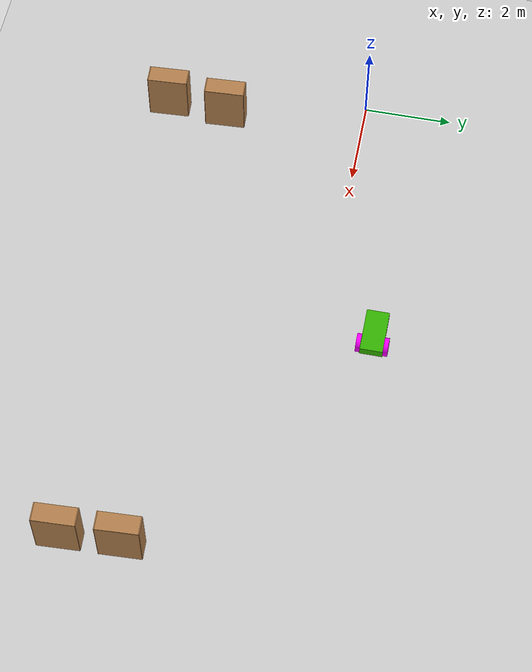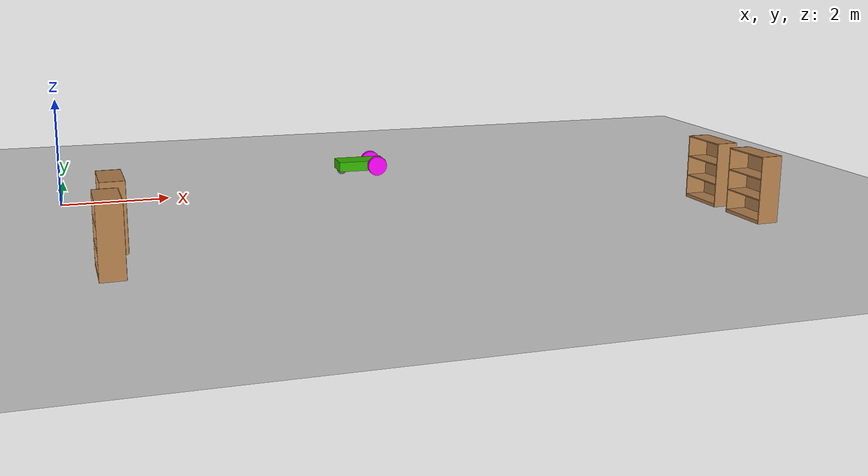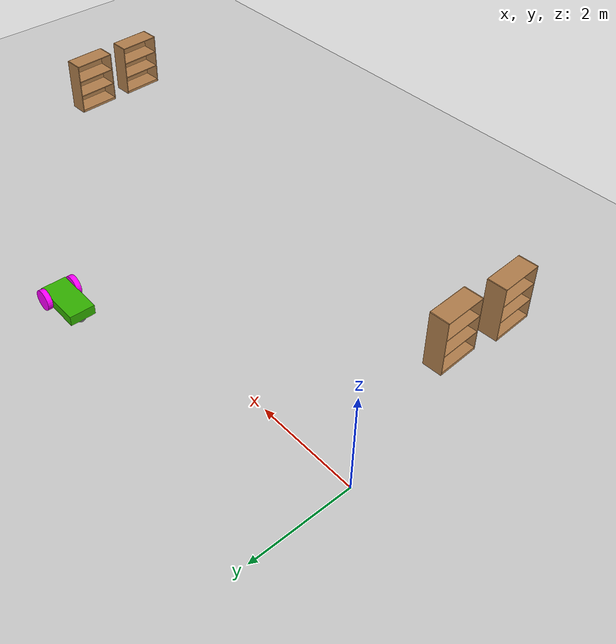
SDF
<sdf version="1.6">
 <world name="default">
  <model name="ground_plane">
   <static>1</static>
   <link name="link">
    <collision name="collision">
     <geometry><plane><normal>0 0 1</normal><size>100 100</size></plane></geometry>
     <surface><friction><ode><mu>100</mu><mu2>50</mu2></ode></friction></surface>
    </collision>
    <visual name="visual">
     <cast_shadows>0</cast_shadows>
     <geometry><plane><normal>0 0 1</normal><size>100 100</size></plane></geometry>
     <material>
      <script><uri>file://media/materials/scripts/gazebo.material</uri><name>Gazebo/Grey</name></script>
     </material>
    </visual>
   </link>
  </model>
  <model name="bookshelf">
   <static>1</static>
   <link name="link">
    <inertial><mass>1</mass></inertial>
    <collision name="back">
     <pose>0 0.005 0.6 0 -0 0</pose>
     <geometry><box><size>0.9 0.01 1.2</size></box></geometry>
    </collision>
    <visual name="visual1">
     <pose>0 0.005 0.6 0 -0 0</pose>
     <geometry><box><size>0.9 0.01 1.2</size></box></geometry>
     <material>
      <script><uri>file://media/materials/scripts/gazebo.material</uri><name>Gazebo/Wood</name></script>
     </material>
    </visual>
    <collision name="left_side">
     <pose>0.45 -0.195 0.6 0 -0 0</pose>
     <geometry><box><size>0.02 0.4 1.2</size></box></geometry>
    </collision>
    <visual name="visual2">
     <pose>0.45 -0.195 0.6 0 -0 0</pose>
     <geometry><box><size>0.02 0.4 1.2</size></box></geometry>
     <material>
      <script><uri>file://media/materials/scripts/gazebo.material</uri><name>Gazebo/Wood</name></script>
     </material>
    </visual>
    <collision name="right_side">
     <pose>-0.45 -0.195 0.6 0 -0 0</pose>
     <geometry><box><size>0.02 0.4 1.2</size></box></geometry>
    </collision>
    <visual name="visual3">
     <pose>-0.45 -0.195 0.6 0 -0 0</pose>
     <geometry><box><size>0.02 0.4 1.2</size></box></geometry>
     <material>
      <script><uri>file://media/materials/scripts/gazebo.material</uri><name>Gazebo/Wood</name></script>
     </material>
    </visual>
    <collision name="bottom">
     <pose>0 -0.195 0.03 0 -0 0</pose>
     <geometry><box><size>0.88 0.4 0.06</size></box></geometry>
    </collision>
    <visual name="visual4">
     <pose>0 -0.195 0.03 0 -0 0</pose>
     <geometry><box><size>0.88 0.4 0.06</size></box></geometry>
     <material>
      <script><uri>file://media/materials/scripts/gazebo.material</uri><name>Gazebo/Wood</name></script>
     </material>
    </visual>
    <collision name="top">
     <pose>0 -0.195 1.19 0 -0 0</pose>
     <geometry><box><size>0.88 0.4 0.02</size></box></geometry>
    </collision>
    <visual name="visual5">
     <pose>0 -0.195 1.19 0 -0 0</pose>
     <geometry><box><size>0.88 0.4 0.02</size></box></geometry>
     <material>
      <script><uri>file://media/materials/scripts/gazebo.material</uri><name>Gazebo/Wood</name></script>
     </material>
    </visual>
    <collision name="low_shelf">
     <pose>0 -0.195 0.43 0 -0 0</pose>
     <geometry><box><size>0.88 0.4 0.02</size></box></geometry>
    </collision>
    <visual name="visual6">
     <pose>0 -0.195 0.43 0 -0 0</pose>
     <geometry><box><size>0.88 0.4 0.02</size></box></geometry>
     <material>
      <script><uri>file://media/materials/scripts/gazebo.material</uri><name>Gazebo/Wood</name></script>
     </material>
    </visual>
    <collision name="high_shelf">
     <pose>0 -0.195 0.8 0 -0 0</pose>
     <geometry><box><size>0.88 0.4 0.02</size></box></geometry>
    </collision>
    <visual name="visual7">
     <pose>0 -0.195 0.8 0 -0 0</pose>
     <geometry><box><size>0.88 0.4 0.02</size></box></geometry>
     <material>
      <script><uri>file://media/materials/scripts/gazebo.material</uri><name>Gazebo/Wood</name></script>
     </material>
    </visual>
   </link>
   <pose>0.980106 -4.53001 0 0 0 -1.52246</pose>
  </model>
  <model name="bookshelf_clone">
   <static>1</static>
   <link name="link">
    <inertial><mass>1</mass></inertial>
    <collision name="back">
     <pose>0 0.005 0.6 0 -0 0</pose>
     <geometry><box><size>0.9 0.01 1.2</size></box></geometry>
    </collision>
    <visual name="visual1">
     <pose>0 0.005 0.6 0 -0 0</pose>
     <geometry><box><size>0.9 0.01 1.2</size></box></geometry>
     <material>
      <script><uri>file://media/materials/scripts/gazebo.material</uri><name>Gazebo/Wood</name></script>
     </material>
    </visual>
    <collision name="left_side">
     <pose>0.45 -0.195 0.6 0 -0 0</pose>
     <geometry><box><size>0.02 0.4 1.2</size></box></geometry>
    </collision>
    <visual name="visual2">
     <pose>0.45 -0.195 0.6 0 -0 0</pose>
     <geometry><box><size>0.02 0.4 1.2</size></box></geometry>
     <material>
      <script><uri>file://media/materials/scripts/gazebo.material</uri><name>Gazebo/Wood</name></script>
     </material>
    </visual>
    <collision name="right_side">
     <pose>-0.45 -0.195 0.6 0 -0 0</pose>
     <geometry><box><size>0.02 0.4 1.2</size></box></geometry>
    </collision>
    <visual name="visual3">
     <pose>-0.45 -0.195 0.6 0 -0 0</pose>
     <geometry><box><size>0.02 0.4 1.2</size></box></geometry>
     <material>
      <script><uri>file://media/materials/scripts/gazebo.material</uri><name>Gazebo/Wood</name></script>
     </material>
    </visual>
    <collision name="bottom">
     <pose>0 -0.195 0.03 0 -0 0</pose>
     <geometry><box><size>0.88 0.4 0.06</size></box></geometry>
    </collision>
    <visual name="visual4">
     <pose>0 -0.195 0.03 0 -0 0</pose>
     <geometry><box><size>0.88 0.4 0.06</size></box></geometry>
     <material>
      <script><uri>file://media/materials/scripts/gazebo.material</uri><name>Gazebo/Wood</name></script>
     </material>
    </visual>
    <collision name="top">
     <pose>0 -0.195 1.19 0 -0 0</pose>
     <geometry><box><size>0.88 0.4 0.02</size></box></geometry>
    </collision>
    <visual name="visual5">
     <pose>0 -0.195 1.19 0 -0 0</pose>
     <geometry><box><size>0.88 0.4 0.02</size></box></geometry>
     <material>
      <script><uri>file://media/materials/scripts/gazebo.material</uri><name>Gazebo/Wood</name></script>
     </material>
    </visual>
    <collision name="low_shelf">
     <pose>0 -0.195 0.43 0 -0 0</pose>
     <geometry><box><size>0.88 0.4 0.02</size></box></geometry>
    </collision>
    <visual name="visual6">
     <pose>0 -0.195 0.43 0 -0 0</pose>
     <geometry><box><size>0.88 0.4 0.02</size></box></geometry>
     <material>
      <script><uri>file://media/materials/scripts/gazebo.material</uri><name>Gazebo/Wood</name></script>
     </material>
    </visual>
    <collision name="high_shelf">
     <pose>0 -0.195 0.8 0 -0 0</pose>
     <geometry><box><size>0.88 0.4 0.02</size></box></geometry>
    </collision>
    <visual name="visual7">
     <pose>0 -0.195 0.8 0 -0 0</pose>
     <geometry><box><size>0.88 0.4 0.02</size></box></geometry>
     <material>
      <script><uri>file://media/materials/scripts/gazebo.material</uri><name>Gazebo/Wood</name></script>
     </material>
    </visual>
   </link>
   <pose>1.06301 -3.18048 0 0 0 -1.52246</pose>
  </model>
  <model name="bookshelf_clone_0">
   <static>1</static>
   <link name="link">
    <inertial><mass>1</mass></inertial>
    <collision name="back">
     <pose>0 0.005 0.6 0 -0 0</pose>
     <geometry><box><size>0.9 0.01 1.2</size></box></geometry>
    </collision>
    <visual name="visual1">
     <pose>0 0.005 0.6 0 -0 0</pose>
     <geometry><box><size>0.9 0.01 1.2</size></box></geometry>
     <material>
      <script><uri>file://media/materials/scripts/gazebo.material</uri><name>Gazebo/Wood</name></script>
     </material>
    </visual>
    <collision name="left_side">
     <pose>0.45 -0.195 0.6 0 -0 0</pose>
     <geometry><box><size>0.02 0.4 1.2</size></box></geometry>
    </collision>
    <visual name="visual2">
     <pose>0.45 -0.195 0.6 0 -0 0</pose>
     <geometry><box><size>0.02 0.4 1.2</size></box></geometry>
     <material>
      <script><uri>file://media/materials/scripts/gazebo.material</uri><name>Gazebo/Wood</name></script>
     </material>
    </visual>
    <collision name="right_side">
     <pose>-0.45 -0.195 0.6 0 -0 0</pose>
     <geometry><box><size>0.02 0.4 1.2</size></box></geometry>
    </collision>
    <visual name="visual3">
     <pose>-0.45 -0.195 0.6 0 -0 0</pose>
     <geometry><box><size>0.02 0.4 1.2</size></box></geometry>
     <material>
      <script><uri>file://media/materials/scripts/gazebo.material</uri><name>Gazebo/Wood</name></script>
     </material>
    </visual>
    <collision name="bottom">
     <pose>0 -0.195 0.03 0 -0 0</pose>
     <geometry><box><size>0.88 0.4 0.06</size></box></geometry>
    </collision>
    <visual name="visual4">
     <pose>0 -0.195 0.03 0 -0 0</pose>
     <geometry><box><size>0.88 0.4 0.06</size></box></geometry>
     <material>
      <script><uri>file://media/materials/scripts/gazebo.material</uri><name>Gazebo/Wood</name></script>
     </material>
    </visual>
    <collision name="top">
     <pose>0 -0.195 1.19 0 -0 0</pose>
     <geometry><box><size>0.88 0.4 0.02</size></box></geometry>
    </collision>
    <visual name="visual5">
     <pose>0 -0.195 1.19 0 -0 0</pose>
     <geometry><box><size>0.88 0.4 0.02</size></box></geometry>
     <material>
      <script><uri>file://media/materials/scripts/gazebo.material</uri><name>Gazebo/Wood</name></script>
     </material>
    </visual>
    <collision name="low_shelf">
     <pose>0 -0.195 0.43 0 -0 0</pose>
     <geometry><box><size>0.88 0.4 0.02</size></box></geometry>
    </collision>
    <visual name="visual6">
     <pose>0 -0.195 0.43 0 -0 0</pose>
     <geometry><box><size>0.88 0.4 0.02</size></box></geometry>
     <material>
      <script><uri>file://media/materials/scripts/gazebo.material</uri><name>Gazebo/Wood</name></script>
     </material>
    </visual>
    <collision name="high_shelf">
     <pose>0 -0.195 0.8 0 -0 0</pose>
     <geometry><box><size>0.88 0.4 0.02</size></box></geometry>
    </collision>
    <visual name="visual7">
     <pose>0 -0.195 0.8 0 -0 0</pose>
     <geometry><box><size>0.88 0.4 0.02</size></box></geometry>
     <material>
      <script><uri>file://media/materials/scripts/gazebo.material</uri><name>Gazebo/Wood</name></script>
     </material>
    </visual>
   </link>
   <pose>12.1841 -4.34916 0 0 0 -1.52246</pose>
  </model>
  <model name="bookshelf_clone_1">
   <static>1</static>
   <link name="link">
    <inertial><mass>1</mass></inertial>
    <collision name="back">
     <pose>0 0.005 0.6 0 -0 0</pose>
     <geometry><box><size>0.9 0.01 1.2</size></box></geometry>
    </collision>
    <visual name="visual1">
     <pose>0 0.005 0.6 0 -0 0</pose>
     <geometry><box><size>0.9 0.01 1.2</size></box></geometry>
     <material>
      <script><uri>file://media/materials/scripts/gazebo.material</uri><name>Gazebo/Wood</name></script>
     </material>
    </visual>
    <collision name="left_side">
     <pose>0.45 -0.195 0.6 0 -0 0</pose>
     <geometry><box><size>0.02 0.4 1.2</size></box></geometry>
    </collision>
    <visual name="visual2">
     <pose>0.45 -0.195 0.6 0 -0 0</pose>
     <geometry><box><size>0.02 0.4 1.2</size></box></geometry>
     <material>
      <script><uri>file://media/materials/scripts/gazebo.material</uri><name>Gazebo/Wood</name></script>
     </material>
    </visual>
    <collision name="right_side">
     <pose>-0.45 -0.195 0.6 0 -0 0</pose>
     <geometry><box><size>0.02 0.4 1.2</size></box></geometry>
    </collision>
    <visual name="visual3">
     <pose>-0.45 -0.195 0.6 0 -0 0</pose>
     <geometry><box><size>0.02 0.4 1.2</size></box></geometry>
     <material>
      <script><uri>file://media/materials/scripts/gazebo.material</uri><name>Gazebo/Wood</name></script>
     </material>
    </visual>
    <collision name="bottom">
     <pose>0 -0.195 0.03 0 -0 0</pose>
     <geometry><box><size>0.88 0.4 0.06</size></box></geometry>
    </collision>
    <visual name="visual4">
     <pose>0 -0.195 0.03 0 -0 0</pose>
     <geometry><box><size>0.88 0.4 0.06</size></box></geometry>
     <material>
      <script><uri>file://media/materials/scripts/gazebo.material</uri><name>Gazebo/Wood</name></script>
     </material>
    </visual>
    <collision name="top">
     <pose>0 -0.195 1.19 0 -0 0</pose>
     <geometry><box><size>0.88 0.4 0.02</size></box></geometry>
    </collision>
    <visual name="visual5">
     <pose>0 -0.195 1.19 0 -0 0</pose>
     <geometry><box><size>0.88 0.4 0.02</size></box></geometry>
     <material>
      <script><uri>file://media/materials/scripts/gazebo.material</uri><name>Gazebo/Wood</name></script>
     </material>
    </visual>
    <collision name="low_shelf">
     <pose>0 -0.195 0.43 0 -0 0</pose>
     <geometry><box><size>0.88 0.4 0.02</size></box></geometry>
    </collision>
    <visual name="visual6">
     <pose>0 -0.195 0.43 0 -0 0</pose>
     <geometry><box><size>0.88 0.4 0.02</size></box></geometry>
     <material>
      <script><uri>file://media/materials/scripts/gazebo.material</uri><name>Gazebo/Wood</name></script>
     </material>
    </visual>
    <collision name="high_shelf">
     <pose>0 -0.195 0.8 0 -0 0</pose>
     <geometry><box><size>0.88 0.4 0.02</size></box></geometry>
    </collision>
    <visual name="visual7">
     <pose>0 -0.195 0.8 0 -0 0</pose>
     <geometry><box><size>0.88 0.4 0.02</size></box></geometry>
     <material>
      <script><uri>file://media/materials/scripts/gazebo.material</uri><name>Gazebo/Wood</name></script>
     </material>
    </visual>
   </link>
   <pose>12.1324 -3.07267 0 0 0 -1.52246</pose>
  </model>
  <model name="diffrobot_0">
   <link name="link_0">
    <pose>-0.05 -0 0.025 0 -0 0</pose>
    <inertial>
     <mass>1</mass>
     <inertia>
      <ixx>0.166667</ixx>
      <ixy>0</ixy>
      <ixz>0</ixz>
      <iyy>0.166667</iyy>
      <iyz>0</iyz>
      <izz>0.166667</izz>
     </inertia>
    </inertial>
    <visual name="visual">
     <geometry><box><size>1 0.5 0.2</size></box></geometry>
     <material>
      <lighting>1</lighting>
      <script><uri>file://media/materials/scripts/gazebo.material</uri><name>Gazebo/Grey</name></script>
      <ambient>0.2 0.7 0 1</ambient>
      <diffuse>0.2 0.7 0 1</diffuse>
      <specular>0.2 0.7 0 1</specular>
      <emissive>0.2 0.7 0 1</emissive>
      <shader type="vertex"><normal_map>__default__</normal_map></shader>
     </material>
    </visual>
    <collision name="collision">
     <geometry><box><size>1 0.5 0.2</size></box></geometry>
     <surface>
      <friction>
       <ode><mu>1</mu><mu2>1</mu2><fdir1>0 0 0</fdir1><slip1>0</slip1><slip2>0</slip2></ode>
       <torsional>
        <coefficient>1</coefficient>
        <patch_radius>0</patch_radius>
        <surface_radius>0</surface_radius>
        <use_patch_radius>1</use_patch_radius>
        <ode><slip>0</slip></ode>
       </torsional>
      </friction>
      <bounce><restitution_coefficient>0</restitution_coefficient><threshold>1e+06</threshold></bounce>
      <contact>
       <collide_without_contact>0</collide_without_contact>
       <collide_without_contact_bitmask>1</collide_without_contact_bitmask>
       <collide_bitmask>1</collide_bitmask>
       <ode>
        <soft_cfm>0</soft_cfm>
        <soft_erp>0.2</soft_erp>
        <kp>1e+13</kp>
        <kd>1</kd>
        <max_vel>0.01</max_vel>
        <min_depth>0</min_depth>
       </ode>
       <bullet>
        <split_impulse>1</split_impulse>
        <split_impulse_penetration_threshold>-0.01</split_impulse_penetration_threshold>
        <soft_cfm>0</soft_cfm>
        <soft_erp>0.2</soft_erp>
        <kp>1e+13</kp>
        <kd>1</kd>
       </bullet>
      </contact>
     </surface>
    </collision>
   </link>
   <link name="link_1">
    <pose>0.25 -0.300019 0.025 1.5707 -0 0</pose>
    <inertial>
     <mass>1</mass>
     <inertia><ixx>0.145833</ixx><ixy>0</ixy><ixz>0</ixz><iyy>0.145833</iyy><iyz>0</iyz><izz>0.125</izz></inertia>
    </inertial>
    <visual name="visual">
     <geometry><cylinder><radius>0.2</radius><length>0.1</length></cylinder></geometry>
     <material>
      <lighting>1</lighting>
      <script><uri>file://media/materials/scripts/gazebo.material</uri><name>Gazebo/Grey</name></script>
      <ambient>1 0 1 1</ambient>
      <diffuse>1 0 1 1</diffuse>
      <specular>1 0 1 1</specular>
      <emissive>1 0 1 1</emissive>
      <shader type="vertex"><normal_map>__default__</normal_map></shader>
     </material>
    </visual>
    <collision name="collision">
     <geometry><cylinder><radius>0.2</radius><length>0.1</length></cylinder></geometry>
     <surface>
      <friction>
       <ode><mu>1</mu><mu2>1</mu2><fdir1>0 0 0</fdir1><slip1>0</slip1><slip2>0</slip2></ode>
       <torsional>
        <coefficient>1</coefficient>
        <patch_radius>0</patch_radius>
        <surface_radius>0</surface_radius>
        <use_patch_radius>1</use_patch_radius>
        <ode><slip>0</slip></ode>
       </torsional>
      </friction>
      <bounce><restitution_coefficient>0</restitution_coefficient><threshold>1e+06</threshold></bounce>
      <contact>
       <collide_without_contact>0</collide_without_contact>
       <collide_without_contact_bitmask>1</collide_without_contact_bitmask>
       <collide_bitmask>1</collide_bitmask>
       <ode>
        <soft_cfm>0</soft_cfm>
        <soft_erp>0.2</soft_erp>
        <kp>1e+13</kp>
        <kd>1</kd>
        <max_vel>0.01</max_vel>
        <min_depth>0</min_depth>
       </ode>
       <bullet>
        <split_impulse>1</split_impulse>
        <split_impulse_penetration_threshold>-0.01</split_impulse_penetration_threshold>
        <soft_cfm>0</soft_cfm>
        <soft_erp>0.2</soft_erp>
        <kp>1e+13</kp>
        <kd>1</kd>
       </bullet>
      </contact>
     </surface>
    </collision>
   </link>
   <link name="link_1_clone">
    <pose>0.25 0.300019 0.025 1.5707 -0 0</pose>
    <inertial>
     <mass>1</mass>
     <inertia><ixx>0.145833</ixx><ixy>0</ixy><ixz>0</ixz><iyy>0.145833</iyy><iyz>0</iyz><izz>0.125</izz></inertia>
    </inertial>
    <visual name="visual">
     <geometry><cylinder><radius>0.2</radius><length>0.1</length></cylinder></geometry>
     <material>
      <lighting>1</lighting>
      <script><uri>file://media/materials/scripts/gazebo.material</uri><name>Gazebo/Grey</name></script>
      <ambient>1 0 1 1</ambient>
      <diffuse>1 0 1 1</diffuse>
      <specular>1 0 1 1</specular>
      <emissive>1 0 1 1</emissive>
      <shader type="vertex"><normal_map>__default__</normal_map></shader>
     </material>
    </visual>
    <collision name="collision">
     <geometry><cylinder><radius>0.2</radius><length>0.1</length></cylinder></geometry>
     <surface>
      <friction>
       <ode><mu>1</mu><mu2>1</mu2><fdir1>0 0 0</fdir1><slip1>0</slip1><slip2>0</slip2></ode>
       <torsional>
        <coefficient>1</coefficient>
        <patch_radius>0</patch_radius>
        <surface_radius>0</surface_radius>
        <use_patch_radius>1</use_patch_radius>
        <ode><slip>0</slip></ode>
       </torsional>
      </friction>
      <bounce><restitution_coefficient>0</restitution_coefficient><threshold>1e+06</threshold></bounce>
      <contact>
       <collide_without_contact>0</collide_without_contact>
       <collide_without_contact_bitmask>1</collide_without_contact_bitmask>
       <collide_bitmask>1</collide_bitmask>
       <ode>
        <soft_cfm>0</soft_cfm>
        <soft_erp>0.2</soft_erp>
        <kp>1e+13</kp>
        <kd>1</kd>
        <max_vel>0.01</max_vel>
        <min_depth>0</min_depth>
       </ode>
       <bullet>
        <split_impulse>1</split_impulse>
        <split_impulse_penetration_threshold>-0.01</split_impulse_penetration_threshold>
        <soft_cfm>0</soft_cfm>
        <soft_erp>0.2</soft_erp>
        <kp>1e+13</kp>
        <kd>1</kd>
       </bullet>
      </contact>
     </surface>
    </collision>
   </link>
   <link name="link_2">
    <pose>-0.45 0 -0.075 0 -0 0</pose>
    <inertial>
     <mass>1</mass>
     <inertia><ixx>0.1</ixx><ixy>0</ixy><ixz>0</ixz><iyy>0.1</iyy><iyz>0</iyz><izz>0.1</izz></inertia>
    </inertial>
    <visual name="visual">
     <geometry><sphere><radius>0.1</radius></sphere></geometry>
     <material>
      <lighting>1</lighting>
      <script><uri>file://media/materials/scripts/gazebo.material</uri><name>Gazebo/Grey</name></script>
      <ambient>0.3 0.3 0.3 1</ambient>
      <diffuse>0.7 0.7 0.7 1</diffuse>
      <specular>0.01 0.01 0.01 1</specular>
      <emissive>0 0 0 1</emissive>
      <shader type="vertex"><normal_map>__default__</normal_map></shader>
     </material>
    </visual>
    <collision name="collision">
     <geometry><sphere><radius>0.1</radius></sphere></geometry>
     <surface>
      <friction>
       <ode><mu>1</mu><mu2>1</mu2><fdir1>0 0 0</fdir1><slip1>0</slip1><slip2>0</slip2></ode>
       <torsional>
        <coefficient>1</coefficient>
        <patch_radius>0</patch_radius>
        <surface_radius>0</surface_radius>
        <use_patch_radius>1</use_patch_radius>
        <ode><slip>0</slip></ode>
       </torsional>
      </friction>
      <bounce><restitution_coefficient>0</restitution_coefficient><threshold>1e+06</threshold></bounce>
      <contact>
       <collide_without_contact>0</collide_without_contact>
       <collide_without_contact_bitmask>1</collide_without_contact_bitmask>
       <collide_bitmask>1</collide_bitmask>
       <ode>
        <soft_cfm>0</soft_cfm>
        <soft_erp>0.2</soft_erp>
        <kp>1e+13</kp>
        <kd>1</kd>
        <max_vel>0.01</max_vel>
        <min_depth>0</min_depth>
       </ode>
       <bullet>
        <split_impulse>1</split_impulse>
        <split_impulse_penetration_threshold>-0.01</split_impulse_penetration_threshold>
        <soft_cfm>0</soft_cfm>
        <soft_erp>0.2</soft_erp>
        <kp>1e+13</kp>
        <kd>1</kd>
       </bullet>
      </contact>
     </surface>
    </collision>
   </link>
   <joint name="link_0_JOINT_0" type="revolute">
    <parent>link_0</parent>
    <child>link_1</child>
    <axis>
     <xyz>0 0 1</xyz>
     <use_parent_model_frame>0</use_parent_model_frame>
     <limit>
      <lower>-1.79769e+308</lower>
      <upper>1.79769e+308</upper>
      <effort>-1</effort>
      <velocity>-1</velocity>
     </limit>
     <dynamics>
      <spring_reference>0</spring_reference>
      <spring_stiffness>0</spring_stiffness>
      <damping>0</damping>
      <friction>0</friction>
     </dynamics>
    </axis>
    <physics>
     <ode><limit><cfm>0</cfm><erp>0.2</erp></limit><suspension><cfm>0</cfm><erp>0.2</erp></suspension></ode>
    </physics>
   </joint>
   <joint name="link_0_JOINT_1" type="revolute">
    <parent>link_0</parent>
    <child>link_1_clone</child>
    <axis>
     <xyz>0 0 1</xyz>
     <use_parent_model_frame>0</use_parent_model_frame>
     <limit>
      <lower>-1.79769e+308</lower>
      <upper>1.79769e+308</upper>
      <effort>-1</effort>
      <velocity>-1</velocity>
     </limit>
     <dynamics>
      <spring_reference>0</spring_reference>
      <spring_stiffness>0</spring_stiffness>
      <damping>0</damping>
      <friction>0</friction>
     </dynamics>
    </axis>
    <physics>
     <ode><limit><cfm>0</cfm><erp>0.2</erp></limit><suspension><cfm>0</cfm><erp>0.2</erp></suspension></ode>
    </physics>
   </joint>
   <joint name="link_0_JOINT_2" type="ball">
    <parent>link_0</parent>
    <child>link_2</child>
    <physics>
     <ode><limit><cfm>0</cfm><erp>0.2</erp></limit><suspension><cfm>0</cfm><erp>0.2</erp></suspension></ode>
    </physics>
   </joint>
   <static>0</static>
   <pose>6.17149 1.16276 0.174999 4e-06 -1.8e-05 -0.003839</pose>
  </model>
 </world>
</sdf>
